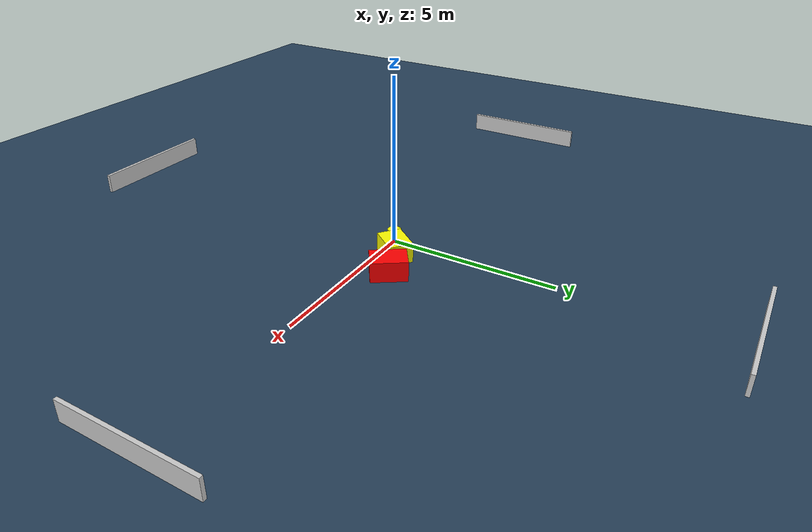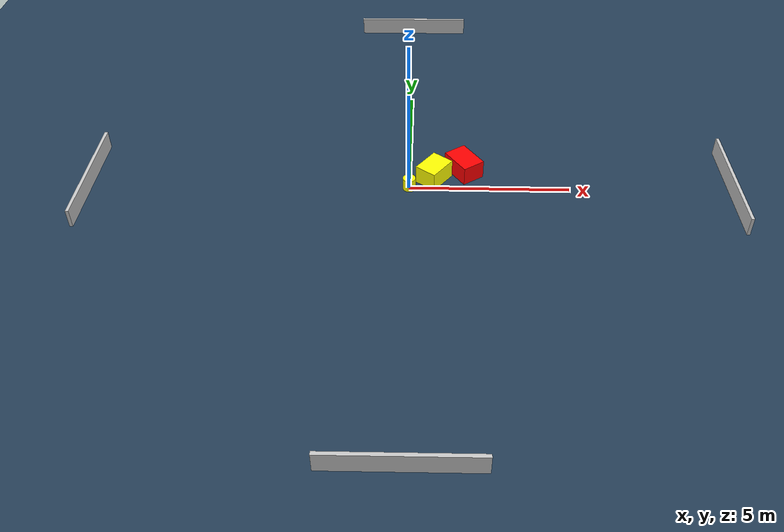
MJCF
<?xml version="1.0" ?>
<mujoco model="generated_environment">
  <option timestep="0.01" integrator="RK4" cone="elliptic"/>
  <default>
    <geom density="1"/>
  </default>
  <asset>
    <texture builtin="gradient" height="3072" name="skybox" rgb1="0.3 0.5 0.7" rgb2="0 0 0" type="skybox" width="512"/>
    <texture builtin="checker" height="300" name="groundplane" rgb1="0.2 0.3 0.4" rgb2="0.1 0.2 0.3" type="2d" width="300"/>
    <material name="groundplane" reflectance="0.2" texrepeat="5 5" texture="groundplane"/>
  </asset>
  <worldbody>
    <light dir="0 0 -1" directional="true" pos="0 0 1.5"/>
    <geom condim="3" friction="0.5 0.005 0.001" material="groundplane" name="floor" pos="0 0 0" size="0 0 0.05" type="plane"/>
    <body name="walls">
      <geom name="wall_1" condim="4" pos="-10.0 0.0 0.3" rgba="0.800000011920929 0.800000011920929 0.800000011920929 1.0" size="0.05 2.0 0.3" type="box"/>
      <geom name="wall_2" condim="4" pos="10.0 0.0 0.3" rgba="0.800000011920929 0.800000011920929 0.800000011920929 1.0" size="0.05 2.0 0.3" type="box"/>
      <geom name="wall_3" condim="4" pos="0.0 -10.0 0.3" rgba="0.800000011920929 0.800000011920929 0.800000011920929 1.0" size="2.0 0.05 0.3" type="box"/>
      <geom name="wall_4" condim="4" pos="0.0 10.0 0.3" rgba="0.800000011920929 0.800000011920929 0.800000011920929 1.0" size="2.0 0.05 0.3" type="box"/>
    </body>
    <body name="robot">
      <joint name="joint_x" type="slide" pos="0 0 0" axis="1 0 0"/>
      <joint name="joint_y" type="slide" pos="0 0 0" axis="0 1 0"/>
      <geom name="robot" type="cylinder" pos="0.0 0.0 0.2" size="0.2 0.2 0.0" mass="5.0" friction="1.0 0.005 0.0001" condim="4" rgba="1.0 1.0 0.0 1.0"/>
    </body>
    <body name="obstacle_1_movable">
      <geom name="obstacle_1_movable" condim="4" pos="0.7751993381509767 0.4792625452213995 0.3" euler="0 0 232.81215672326104" friction="0.0 0.005 0.001" rgba="1.0 1.0 0.0 1.0" size="0.4725237117974888 0.3596975355389539 0.3" type="box" mass="0.1"/>
      <joint type="free"/>
    </body>
    <body name="obstacle_2_static">
      <geom name="obstacle_2_static" condim="4" pos="1.7286206922519651 0.8419963221425785 0.3" euler="0 0 34.5165017206355" friction="0.0 0.005 0.001" rgba="1.0 0.0 0.0 1.0" size="0.3711537259111414 0.5240194865177319 0.3" type="box"/>
    </body>
  </worldbody>
  <actuator>
    <motor name="actuator_x" joint="joint_x" gear="1" ctrlrange="-1 1"/>
    <motor name="actuator_y" joint="joint_y" gear="1" ctrlrange="-1 1"/>
  </actuator>
</mujoco>
